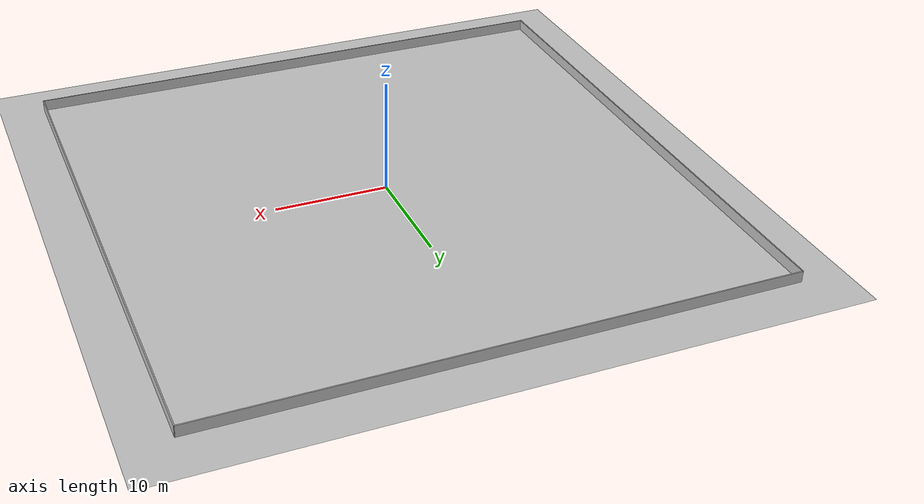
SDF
<?xml version="1.0" ?>
<sdf version="1.7">
  <world name="arena">

    <!-- Ground -->
    <include>
        <uri>https://fuel.gazebosim.org/1.0/OpenRobotics/models/Ground%20Plane</uri>
    </include>

    <include>
        <uri>https://fuel.gazebosim.org/1.0/OpenRobotics/models/Sun</uri>
    </include>

    <!-- North wall -->
    <model name="wall_north">
      <static>true</static>
      <pose>0 25 0.5 0 0 0</pose>
      <link name="link">
        <collision name="c">
          <geometry><box><size>50 0.1 1</size></box></geometry>
        </collision>
        <visual name="v">
          <geometry><box><size>50 0.1 1</size></box></geometry>
        </visual>
      </link>
    </model>

    <!-- South wall -->
    <model name="wall_south">
      <static>true</static>
      <pose>0 -25 0.5 0 0 0</pose>
      <link name="link">
        <collision name="c">
          <geometry><box><size>50 0.1 1</size></box></geometry>
        </collision>
        <visual name="v">
          <geometry><box><size>50 0.1 1</size></box></geometry>
        </visual>
      </link>
    </model>

    <!-- East wall -->
    <model name="wall_east">
      <static>true</static>
      <pose>25 0 0.5 0 0 0</pose>
      <link name="link">
        <collision name="c">
          <geometry><box><size>0.1 50 1</size></box></geometry>
        </collision>
        <visual name="v">
          <geometry><box><size>0.1 50 1</size></box></geometry>
        </visual>
      </link>
    </model>

    <!-- West wall -->
    <model name="wall_west">
      <static>true</static>
      <pose>-25 0 0.5 0 0 0</pose>
      <link name="link">
        <collision name="c">
          <geometry><box><size>0.1 50 1</size></box></geometry>
        </collision>
        <visual name="v">
          <geometry><box><size>0.1 50 1</size></box></geometry>
        </visual>
      </link>
    </model>

  </world>
</sdf>
